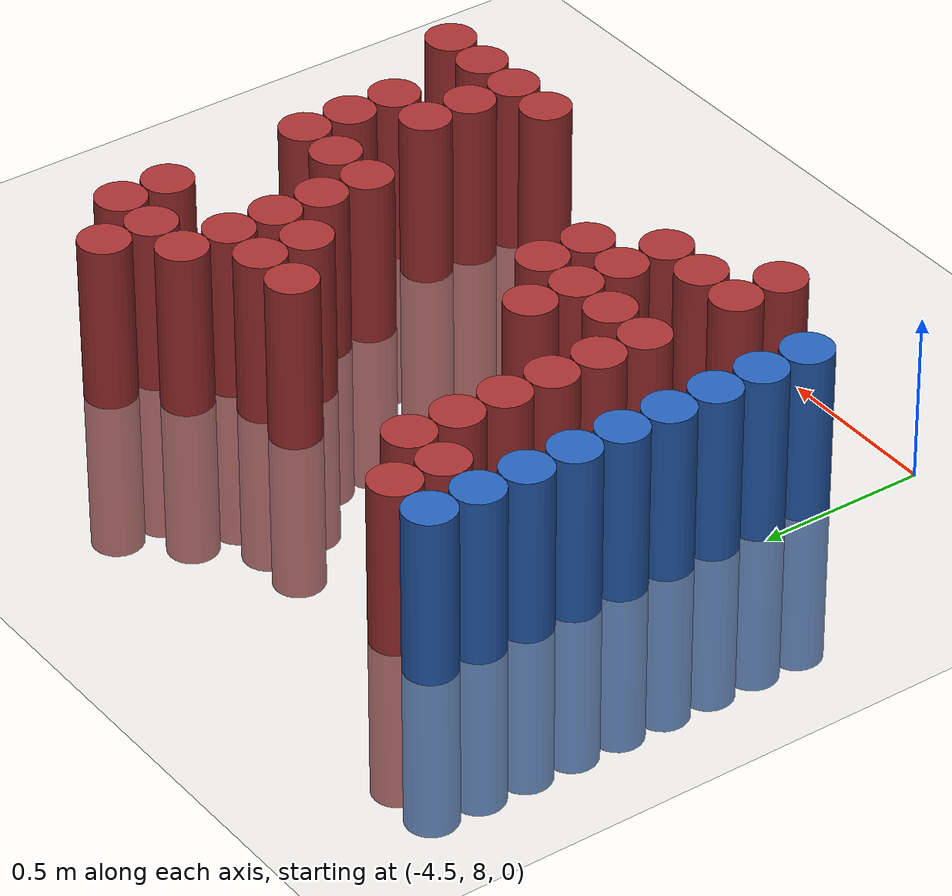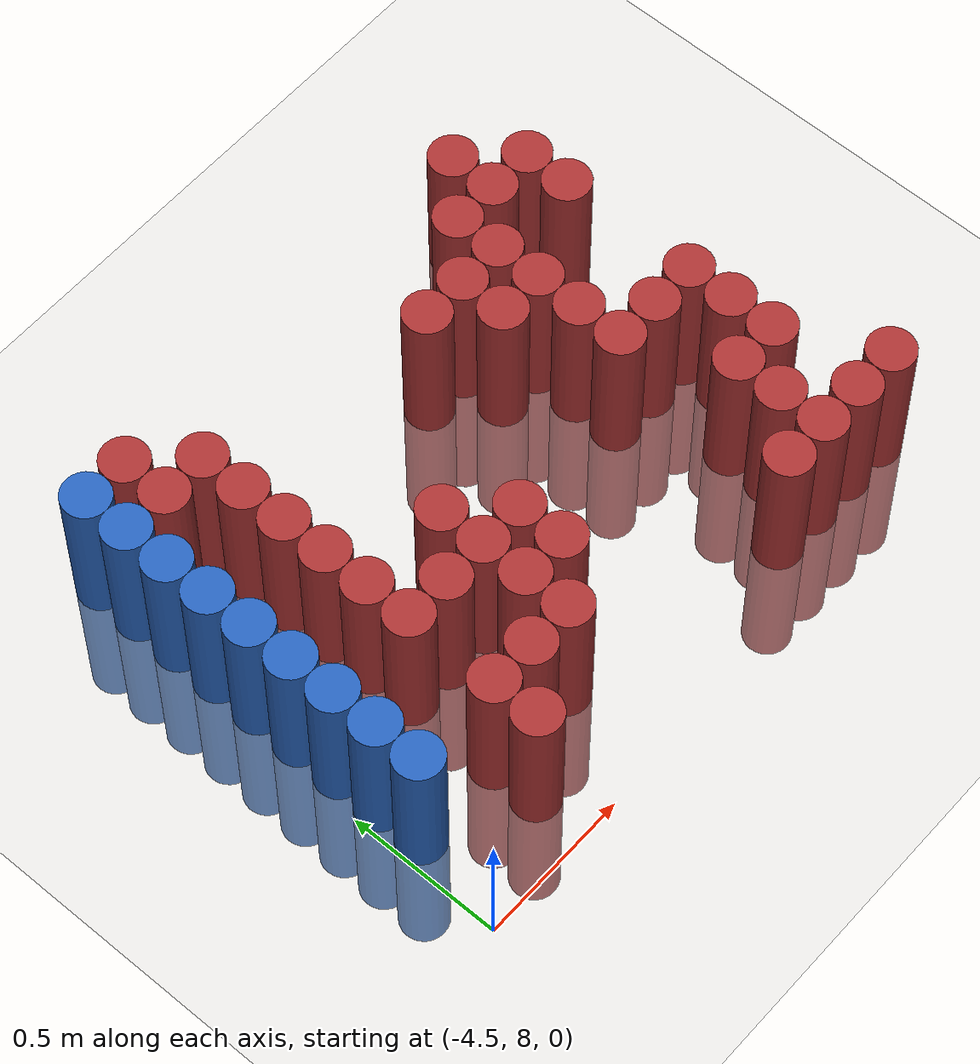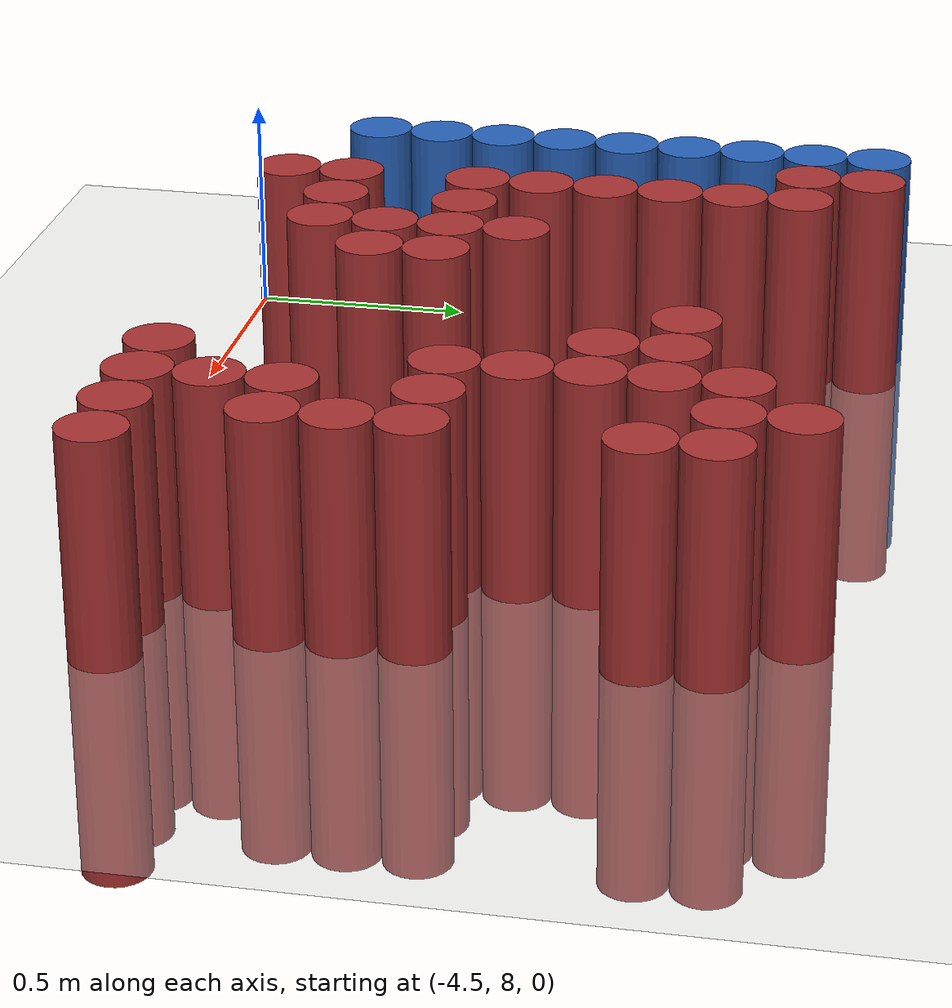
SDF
<sdf version="1.6">
 <world name="default">
  <model name="ground_plane">
   <static>1</static>
   <link name="link">
    <collision name="collision">
     <geometry><plane><normal>0 0 1</normal><size>100 100</size></plane></geometry>
     <surface><friction><ode><mu>100</mu><mu2>50</mu2></ode></friction></surface>
    </collision>
    <visual name="visual">
     <cast_shadows>0</cast_shadows>
     <geometry><plane><normal>0 0 1</normal><size>100 100</size></plane></geometry>
     <material>
      <script><uri>file://media/materials/scripts/gazebo.material</uri><name>Gazebo/Grey</name></script>
     </material>
    </visual>
   </link>
  </model>
  <model name="unit_cylinder_117">
   <static>1</static>
   <pose>-4.425000 8.325000 0.000000 0.000000 0.000000 0.000000</pose>
   <link name="link">
    <inertial>
     <mass>1</mass>
     <inertia><ixx>0.145833</ixx><ixy>0</ixy><ixz>0</ixz><iyy>0.145833</iyy><iyz>0</iyz><izz>0.125</izz></inertia>
    </inertial>
    <collision name="collision">
     <geometry><cylinder><radius>0.075000</radius><length>1</length></cylinder></geometry>
    </collision>
    <visual name="visual">
     <geometry><cylinder><radius>0.075000</radius><length>1</length></cylinder></geometry>
     <material>
      <ambient>0.152000 0.379000 0.720000 1</ambient>
      <diffuse>0.152000 0.379000 0.720000 1</diffuse>
     </material>
     <material>
      <script><name>Gazebo/Grey</name><uri>file://media/materials/scripts/gazebo.material</uri></script>
     </material>
    </visual>
   </link>
  </model>
  <model name="unit_cylinder_118">
   <static>1</static>
   <pose>-4.425000 8.475000 0.000000 0.000000 0.000000 0.000000</pose>
   <link name="link">
    <inertial>
     <mass>1</mass>
     <inertia><ixx>0.145833</ixx><ixy>0</ixy><ixz>0</ixz><iyy>0.145833</iyy><iyz>0</iyz><izz>0.125</izz></inertia>
    </inertial>
    <collision name="collision">
     <geometry><cylinder><radius>0.075000</radius><length>1</length></cylinder></geometry>
    </collision>
    <visual name="visual">
     <geometry><cylinder><radius>0.075000</radius><length>1</length></cylinder></geometry>
     <material>
      <ambient>0.152000 0.379000 0.720000 1</ambient>
      <diffuse>0.152000 0.379000 0.720000 1</diffuse>
     </material>
     <material>
      <script><name>Gazebo/Grey</name><uri>file://media/materials/scripts/gazebo.material</uri></script>
     </material>
    </visual>
   </link>
  </model>
  <model name="unit_cylinder_119">
   <static>1</static>
   <pose>-4.425000 8.625000 0.000000 0.000000 0.000000 0.000000</pose>
   <link name="link">
    <inertial>
     <mass>1</mass>
     <inertia><ixx>0.145833</ixx><ixy>0</ixy><ixz>0</ixz><iyy>0.145833</iyy><iyz>0</iyz><izz>0.125</izz></inertia>
    </inertial>
    <collision name="collision">
     <geometry><cylinder><radius>0.075000</radius><length>1</length></cylinder></geometry>
    </collision>
    <visual name="visual">
     <geometry><cylinder><radius>0.075000</radius><length>1</length></cylinder></geometry>
     <material>
      <ambient>0.152000 0.379000 0.720000 1</ambient>
      <diffuse>0.152000 0.379000 0.720000 1</diffuse>
     </material>
     <material>
      <script><name>Gazebo/Grey</name><uri>file://media/materials/scripts/gazebo.material</uri></script>
     </material>
    </visual>
   </link>
  </model>
  <model name="unit_cylinder_120">
   <static>1</static>
   <pose>-4.425000 8.775000 0.000000 0.000000 0.000000 0.000000</pose>
   <link name="link">
    <inertial>
     <mass>1</mass>
     <inertia><ixx>0.145833</ixx><ixy>0</ixy><ixz>0</ixz><iyy>0.145833</iyy><iyz>0</iyz><izz>0.125</izz></inertia>
    </inertial>
    <collision name="collision">
     <geometry><cylinder><radius>0.075000</radius><length>1</length></cylinder></geometry>
    </collision>
    <visual name="visual">
     <geometry><cylinder><radius>0.075000</radius><length>1</length></cylinder></geometry>
     <material>
      <ambient>0.152000 0.379000 0.720000 1</ambient>
      <diffuse>0.152000 0.379000 0.720000 1</diffuse>
     </material>
     <material>
      <script><name>Gazebo/Grey</name><uri>file://media/materials/scripts/gazebo.material</uri></script>
     </material>
    </visual>
   </link>
  </model>
  <model name="unit_cylinder_121">
   <static>1</static>
   <pose>-4.425000 8.925000 0.000000 0.000000 0.000000 0.000000</pose>
   <link name="link">
    <inertial>
     <mass>1</mass>
     <inertia><ixx>0.145833</ixx><ixy>0</ixy><ixz>0</ixz><iyy>0.145833</iyy><iyz>0</iyz><izz>0.125</izz></inertia>
    </inertial>
    <collision name="collision">
     <geometry><cylinder><radius>0.075000</radius><length>1</length></cylinder></geometry>
    </collision>
    <visual name="visual">
     <geometry><cylinder><radius>0.075000</radius><length>1</length></cylinder></geometry>
     <material>
      <ambient>0.152000 0.379000 0.720000 1</ambient>
      <diffuse>0.152000 0.379000 0.720000 1</diffuse>
     </material>
     <material>
      <script><name>Gazebo/Grey</name><uri>file://media/materials/scripts/gazebo.material</uri></script>
     </material>
    </visual>
   </link>
  </model>
  <model name="unit_cylinder_122">
   <static>1</static>
   <pose>-4.425000 9.075000 0.000000 0.000000 0.000000 0.000000</pose>
   <link name="link">
    <inertial>
     <mass>1</mass>
     <inertia><ixx>0.145833</ixx><ixy>0</ixy><ixz>0</ixz><iyy>0.145833</iyy><iyz>0</iyz><izz>0.125</izz></inertia>
    </inertial>
    <collision name="collision">
     <geometry><cylinder><radius>0.075000</radius><length>1</length></cylinder></geometry>
    </collision>
    <visual name="visual">
     <geometry><cylinder><radius>0.075000</radius><length>1</length></cylinder></geometry>
     <material>
      <ambient>0.152000 0.379000 0.720000 1</ambient>
      <diffuse>0.152000 0.379000 0.720000 1</diffuse>
     </material>
     <material>
      <script><name>Gazebo/Grey</name><uri>file://media/materials/scripts/gazebo.material</uri></script>
     </material>
    </visual>
   </link>
  </model>
  <model name="unit_cylinder_123">
   <static>1</static>
   <pose>-4.425000 9.225000 0.000000 0.000000 0.000000 0.000000</pose>
   <link name="link">
    <inertial>
     <mass>1</mass>
     <inertia><ixx>0.145833</ixx><ixy>0</ixy><ixz>0</ixz><iyy>0.145833</iyy><iyz>0</iyz><izz>0.125</izz></inertia>
    </inertial>
    <collision name="collision">
     <geometry><cylinder><radius>0.075000</radius><length>1</length></cylinder></geometry>
    </collision>
    <visual name="visual">
     <geometry><cylinder><radius>0.075000</radius><length>1</length></cylinder></geometry>
     <material>
      <ambient>0.152000 0.379000 0.720000 1</ambient>
      <diffuse>0.152000 0.379000 0.720000 1</diffuse>
     </material>
     <material>
      <script><name>Gazebo/Grey</name><uri>file://media/materials/scripts/gazebo.material</uri></script>
     </material>
    </visual>
   </link>
  </model>
  <model name="unit_cylinder_124">
   <static>1</static>
   <pose>-4.425000 9.375000 0.000000 0.000000 0.000000 0.000000</pose>
   <link name="link">
    <inertial>
     <mass>1</mass>
     <inertia><ixx>0.145833</ixx><ixy>0</ixy><ixz>0</ixz><iyy>0.145833</iyy><iyz>0</iyz><izz>0.125</izz></inertia>
    </inertial>
    <collision name="collision">
     <geometry><cylinder><radius>0.075000</radius><length>1</length></cylinder></geometry>
    </collision>
    <visual name="visual">
     <geometry><cylinder><radius>0.075000</radius><length>1</length></cylinder></geometry>
     <material>
      <ambient>0.152000 0.379000 0.720000 1</ambient>
      <diffuse>0.152000 0.379000 0.720000 1</diffuse>
     </material>
     <material>
      <script><name>Gazebo/Grey</name><uri>file://media/materials/scripts/gazebo.material</uri></script>
     </material>
    </visual>
   </link>
  </model>
  <model name="unit_cylinder_125">
   <static>1</static>
   <pose>-4.425000 9.525000 0.000000 0.000000 0.000000 0.000000</pose>
   <link name="link">
    <inertial>
     <mass>1</mass>
     <inertia><ixx>0.145833</ixx><ixy>0</ixy><ixz>0</ixz><iyy>0.145833</iyy><iyz>0</iyz><izz>0.125</izz></inertia>
    </inertial>
    <collision name="collision">
     <geometry><cylinder><radius>0.075000</radius><length>1</length></cylinder></geometry>
    </collision>
    <visual name="visual">
     <geometry><cylinder><radius>0.075000</radius><length>1</length></cylinder></geometry>
     <material>
      <ambient>0.152000 0.379000 0.720000 1</ambient>
      <diffuse>0.152000 0.379000 0.720000 1</diffuse>
     </material>
     <material>
      <script><name>Gazebo/Grey</name><uri>file://media/materials/scripts/gazebo.material</uri></script>
     </material>
    </visual>
   </link>
  </model>
  <model name="unit_cylinder_141">
   <static>1</static>
   <pose>-4.275000 9.375000 0.000000 0.000000 0.000000 0.000000</pose>
   <link name="link">
    <inertial>
     <mass>1</mass>
     <inertia><ixx>0.145833</ixx><ixy>0</ixy><ixz>0</ixz><iyy>0.145833</iyy><iyz>0</iyz><izz>0.125</izz></inertia>
    </inertial>
    <collision name="collision">
     <geometry><cylinder><radius>0.075000</radius><length>1</length></cylinder></geometry>
    </collision>
    <visual name="visual">
     <geometry><cylinder><radius>0.075000</radius><length>1</length></cylinder></geometry>
     <material>
      <ambient>0.648000 0.192000 0.192000 1</ambient>
      <diffuse>0.648000 0.192000 0.192000 1</diffuse>
     </material>
     <material>
      <script><name>Gazebo/Grey</name><uri>file://media/materials/scripts/gazebo.material</uri></script>
     </material>
    </visual>
   </link>
  </model>
  <model name="unit_cylinder_142">
   <static>1</static>
   <pose>-4.275000 9.525000 0.000000 0.000000 0.000000 0.000000</pose>
   <link name="link">
    <inertial>
     <mass>1</mass>
     <inertia><ixx>0.145833</ixx><ixy>0</ixy><ixz>0</ixz><iyy>0.145833</iyy><iyz>0</iyz><izz>0.125</izz></inertia>
    </inertial>
    <collision name="collision">
     <geometry><cylinder><radius>0.075000</radius><length>1</length></cylinder></geometry>
    </collision>
    <visual name="visual">
     <geometry><cylinder><radius>0.075000</radius><length>1</length></cylinder></geometry>
     <material>
      <ambient>0.648000 0.192000 0.192000 1</ambient>
      <diffuse>0.648000 0.192000 0.192000 1</diffuse>
     </material>
     <material>
      <script><name>Gazebo/Grey</name><uri>file://media/materials/scripts/gazebo.material</uri></script>
     </material>
    </visual>
   </link>
  </model>
  <model name="unit_cylinder_149">
   <static>1</static>
   <pose>-4.125000 8.175000 0.000000 0.000000 0.000000 0.000000</pose>
   <link name="link">
    <inertial>
     <mass>1</mass>
     <inertia><ixx>0.145833</ixx><ixy>0</ixy><ixz>0</ixz><iyy>0.145833</iyy><iyz>0</iyz><izz>0.125</izz></inertia>
    </inertial>
    <collision name="collision">
     <geometry><cylinder><radius>0.075000</radius><length>1</length></cylinder></geometry>
    </collision>
    <visual name="visual">
     <geometry><cylinder><radius>0.075000</radius><length>1</length></cylinder></geometry>
     <material>
      <ambient>0.648000 0.192000 0.192000 1</ambient>
      <diffuse>0.648000 0.192000 0.192000 1</diffuse>
     </material>
     <material>
      <script><name>Gazebo/Grey</name><uri>file://media/materials/scripts/gazebo.material</uri></script>
     </material>
    </visual>
   </link>
  </model>
  <model name="unit_cylinder_150">
   <static>1</static>
   <pose>-4.125000 8.325000 0.000000 0.000000 0.000000 0.000000</pose>
   <link name="link">
    <inertial>
     <mass>1</mass>
     <inertia><ixx>0.145833</ixx><ixy>0</ixy><ixz>0</ixz><iyy>0.145833</iyy><iyz>0</iyz><izz>0.125</izz></inertia>
    </inertial>
    <collision name="collision">
     <geometry><cylinder><radius>0.075000</radius><length>1</length></cylinder></geometry>
    </collision>
    <visual name="visual">
     <geometry><cylinder><radius>0.075000</radius><length>1</length></cylinder></geometry>
     <material>
      <ambient>0.648000 0.192000 0.192000 1</ambient>
      <diffuse>0.648000 0.192000 0.192000 1</diffuse>
     </material>
     <material>
      <script><name>Gazebo/Grey</name><uri>file://media/materials/scripts/gazebo.material</uri></script>
     </material>
    </visual>
   </link>
  </model>
  <model name="unit_cylinder_151">
   <static>1</static>
   <pose>-4.125000 8.625000 0.000000 0.000000 0.000000 0.000000</pose>
   <link name="link">
    <inertial>
     <mass>1</mass>
     <inertia><ixx>0.145833</ixx><ixy>0</ixy><ixz>0</ixz><iyy>0.145833</iyy><iyz>0</iyz><izz>0.125</izz></inertia>
    </inertial>
    <collision name="collision">
     <geometry><cylinder><radius>0.075000</radius><length>1</length></cylinder></geometry>
    </collision>
    <visual name="visual">
     <geometry><cylinder><radius>0.075000</radius><length>1</length></cylinder></geometry>
     <material>
      <ambient>0.648000 0.192000 0.192000 1</ambient>
      <diffuse>0.648000 0.192000 0.192000 1</diffuse>
     </material>
     <material>
      <script><name>Gazebo/Grey</name><uri>file://media/materials/scripts/gazebo.material</uri></script>
     </material>
    </visual>
   </link>
  </model>
  <model name="unit_cylinder_152">
   <static>1</static>
   <pose>-4.125000 8.775000 0.000000 0.000000 0.000000 0.000000</pose>
   <link name="link">
    <inertial>
     <mass>1</mass>
     <inertia><ixx>0.145833</ixx><ixy>0</ixy><ixz>0</ixz><iyy>0.145833</iyy><iyz>0</iyz><izz>0.125</izz></inertia>
    </inertial>
    <collision name="collision">
     <geometry><cylinder><radius>0.075000</radius><length>1</length></cylinder></geometry>
    </collision>
    <visual name="visual">
     <geometry><cylinder><radius>0.075000</radius><length>1</length></cylinder></geometry>
     <material>
      <ambient>0.648000 0.192000 0.192000 1</ambient>
      <diffuse>0.648000 0.192000 0.192000 1</diffuse>
     </material>
     <material>
      <script><name>Gazebo/Grey</name><uri>file://media/materials/scripts/gazebo.material</uri></script>
     </material>
    </visual>
   </link>
  </model>
  <model name="unit_cylinder_153">
   <static>1</static>
   <pose>-4.125000 8.925000 0.000000 0.000000 0.000000 0.000000</pose>
   <link name="link">
    <inertial>
     <mass>1</mass>
     <inertia><ixx>0.145833</ixx><ixy>0</ixy><ixz>0</ixz><iyy>0.145833</iyy><iyz>0</iyz><izz>0.125</izz></inertia>
    </inertial>
    <collision name="collision">
     <geometry><cylinder><radius>0.075000</radius><length>1</length></cylinder></geometry>
    </collision>
    <visual name="visual">
     <geometry><cylinder><radius>0.075000</radius><length>1</length></cylinder></geometry>
     <material>
      <ambient>0.648000 0.192000 0.192000 1</ambient>
      <diffuse>0.648000 0.192000 0.192000 1</diffuse>
     </material>
     <material>
      <script><name>Gazebo/Grey</name><uri>file://media/materials/scripts/gazebo.material</uri></script>
     </material>
    </visual>
   </link>
  </model>
  <model name="unit_cylinder_154">
   <static>1</static>
   <pose>-4.125000 9.075000 0.000000 0.000000 0.000000 0.000000</pose>
   <link name="link">
    <inertial>
     <mass>1</mass>
     <inertia><ixx>0.145833</ixx><ixy>0</ixy><ixz>0</ixz><iyy>0.145833</iyy><iyz>0</iyz><izz>0.125</izz></inertia>
    </inertial>
    <collision name="collision">
     <geometry><cylinder><radius>0.075000</radius><length>1</length></cylinder></geometry>
    </collision>
    <visual name="visual">
     <geometry><cylinder><radius>0.075000</radius><length>1</length></cylinder></geometry>
     <material>
      <ambient>0.648000 0.192000 0.192000 1</ambient>
      <diffuse>0.648000 0.192000 0.192000 1</diffuse>
     </material>
     <material>
      <script><name>Gazebo/Grey</name><uri>file://media/materials/scripts/gazebo.material</uri></script>
     </material>
    </visual>
   </link>
  </model>
  <model name="unit_cylinder_155">
   <static>1</static>
   <pose>-4.125000 9.225000 0.000000 0.000000 0.000000 0.000000</pose>
   <link name="link">
    <inertial>
     <mass>1</mass>
     <inertia><ixx>0.145833</ixx><ixy>0</ixy><ixz>0</ixz><iyy>0.145833</iyy><iyz>0</iyz><izz>0.125</izz></inertia>
    </inertial>
    <collision name="collision">
     <geometry><cylinder><radius>0.075000</radius><length>1</length></cylinder></geometry>
    </collision>
    <visual name="visual">
     <geometry><cylinder><radius>0.075000</radius><length>1</length></cylinder></geometry>
     <material>
      <ambient>0.648000 0.192000 0.192000 1</ambient>
      <diffuse>0.648000 0.192000 0.192000 1</diffuse>
     </material>
     <material>
      <script><name>Gazebo/Grey</name><uri>file://media/materials/scripts/gazebo.material</uri></script>
     </material>
    </visual>
   </link>
  </model>
  <model name="unit_cylinder_156">
   <static>1</static>
   <pose>-4.125000 9.375000 0.000000 0.000000 0.000000 0.000000</pose>
   <link name="link">
    <inertial>
     <mass>1</mass>
     <inertia><ixx>0.145833</ixx><ixy>0</ixy><ixz>0</ixz><iyy>0.145833</iyy><iyz>0</iyz><izz>0.125</izz></inertia>
    </inertial>
    <collision name="collision">
     <geometry><cylinder><radius>0.075000</radius><length>1</length></cylinder></geometry>
    </collision>
    <visual name="visual">
     <geometry><cylinder><radius>0.075000</radius><length>1</length></cylinder></geometry>
     <material>
      <ambient>0.648000 0.192000 0.192000 1</ambient>
      <diffuse>0.648000 0.192000 0.192000 1</diffuse>
     </material>
     <material>
      <script><name>Gazebo/Grey</name><uri>file://media/materials/scripts/gazebo.material</uri></script>
     </material>
    </visual>
   </link>
  </model>
  <model name="unit_cylinder_159">
   <static>1</static>
   <pose>-3.975000 8.325000 0.000000 0.000000 0.000000 0.000000</pose>
   <link name="link">
    <inertial>
     <mass>1</mass>
     <inertia><ixx>0.145833</ixx><ixy>0</ixy><ixz>0</ixz><iyy>0.145833</iyy><iyz>0</iyz><izz>0.125</izz></inertia>
    </inertial>
    <collision name="collision">
     <geometry><cylinder><radius>0.075000</radius><length>1</length></cylinder></geometry>
    </collision>
    <visual name="visual">
     <geometry><cylinder><radius>0.075000</radius><length>1</length></cylinder></geometry>
     <material>
      <ambient>0.648000 0.192000 0.192000 1</ambient>
      <diffuse>0.648000 0.192000 0.192000 1</diffuse>
     </material>
     <material>
      <script><name>Gazebo/Grey</name><uri>file://media/materials/scripts/gazebo.material</uri></script>
     </material>
    </visual>
   </link>
  </model>
  <model name="unit_cylinder_160">
   <static>1</static>
   <pose>-3.975000 8.625000 0.000000 0.000000 0.000000 0.000000</pose>
   <link name="link">
    <inertial>
     <mass>1</mass>
     <inertia><ixx>0.145833</ixx><ixy>0</ixy><ixz>0</ixz><iyy>0.145833</iyy><iyz>0</iyz><izz>0.125</izz></inertia>
    </inertial>
    <collision name="collision">
     <geometry><cylinder><radius>0.075000</radius><length>1</length></cylinder></geometry>
    </collision>
    <visual name="visual">
     <geometry><cylinder><radius>0.075000</radius><length>1</length></cylinder></geometry>
     <material>
      <ambient>0.648000 0.192000 0.192000 1</ambient>
      <diffuse>0.648000 0.192000 0.192000 1</diffuse>
     </material>
     <material>
      <script><name>Gazebo/Grey</name><uri>file://media/materials/scripts/gazebo.material</uri></script>
     </material>
    </visual>
   </link>
  </model>
  <model name="unit_cylinder_164">
   <static>1</static>
   <pose>-3.825000 8.325000 0.000000 0.000000 0.000000 0.000000</pose>
   <link name="link">
    <inertial>
     <mass>1</mass>
     <inertia><ixx>0.145833</ixx><ixy>0</ixy><ixz>0</ixz><iyy>0.145833</iyy><iyz>0</iyz><izz>0.125</izz></inertia>
    </inertial>
    <collision name="collision">
     <geometry><cylinder><radius>0.075000</radius><length>1</length></cylinder></geometry>
    </collision>
    <visual name="visual">
     <geometry><cylinder><radius>0.075000</radius><length>1</length></cylinder></geometry>
     <material>
      <ambient>0.648000 0.192000 0.192000 1</ambient>
      <diffuse>0.648000 0.192000 0.192000 1</diffuse>
     </material>
     <material>
      <script><name>Gazebo/Grey</name><uri>file://media/materials/scripts/gazebo.material</uri></script>
     </material>
    </visual>
   </link>
  </model>
  <model name="unit_cylinder_165">
   <static>1</static>
   <pose>-3.825000 8.475000 0.000000 0.000000 0.000000 0.000000</pose>
   <link name="link">
    <inertial>
     <mass>1</mass>
     <inertia><ixx>0.145833</ixx><ixy>0</ixy><ixz>0</ixz><iyy>0.145833</iyy><iyz>0</iyz><izz>0.125</izz></inertia>
    </inertial>
    <collision name="collision">
     <geometry><cylinder><radius>0.075000</radius><length>1</length></cylinder></geometry>
    </collision>
    <visual name="visual">
     <geometry><cylinder><radius>0.075000</radius><length>1</length></cylinder></geometry>
     <material>
      <ambient>0.648000 0.192000 0.192000 1</ambient>
      <diffuse>0.648000 0.192000 0.192000 1</diffuse>
     </material>
     <material>
      <script><name>Gazebo/Grey</name><uri>file://media/materials/scripts/gazebo.material</uri></script>
     </material>
    </visual>
   </link>
  </model>
  <model name="unit_cylinder_166">
   <static>1</static>
   <pose>-3.825000 8.625000 0.000000 0.000000 0.000000 0.000000</pose>
   <link name="link">
    <inertial>
     <mass>1</mass>
     <inertia><ixx>0.145833</ixx><ixy>0</ixy><ixz>0</ixz><iyy>0.145833</iyy><iyz>0</iyz><izz>0.125</izz></inertia>
    </inertial>
    <collision name="collision">
     <geometry><cylinder><radius>0.075000</radius><length>1</length></cylinder></geometry>
    </collision>
    <visual name="visual">
     <geometry><cylinder><radius>0.075000</radius><length>1</length></cylinder></geometry>
     <material>
      <ambient>0.648000 0.192000 0.192000 1</ambient>
      <diffuse>0.648000 0.192000 0.192000 1</diffuse>
     </material>
     <material>
      <script><name>Gazebo/Grey</name><uri>file://media/materials/scripts/gazebo.material</uri></script>
     </material>
    </visual>
   </link>
  </model>
  <model name="unit_cylinder_167">
   <static>1</static>
   <pose>-3.825000 8.775000 0.000000 0.000000 0.000000 0.000000</pose>
   <link name="link">
    <inertial>
     <mass>1</mass>
     <inertia><ixx>0.145833</ixx><ixy>0</ixy><ixz>0</ixz><iyy>0.145833</iyy><iyz>0</iyz><izz>0.125</izz></inertia>
    </inertial>
    <collision name="collision">
     <geometry><cylinder><radius>0.075000</radius><length>1</length></cylinder></geometry>
    </collision>
    <visual name="visual">
     <geometry><cylinder><radius>0.075000</radius><length>1</length></cylinder></geometry>
     <material>
      <ambient>0.648000 0.192000 0.192000 1</ambient>
      <diffuse>0.648000 0.192000 0.192000 1</diffuse>
     </material>
     <material>
      <script><name>Gazebo/Grey</name><uri>file://media/materials/scripts/gazebo.material</uri></script>
     </material>
    </visual>
   </link>
  </model>
  <model name="unit_cylinder_172">
   <static>1</static>
   <pose>-3.675000 8.475000 0.000000 0.000000 0.000000 0.000000</pose>
   <link name="link">
    <inertial>
     <mass>1</mass>
     <inertia><ixx>0.145833</ixx><ixy>0</ixy><ixz>0</ixz><iyy>0.145833</iyy><iyz>0</iyz><izz>0.125</izz></inertia>
    </inertial>
    <collision name="collision">
     <geometry><cylinder><radius>0.075000</radius><length>1</length></cylinder></geometry>
    </collision>
    <visual name="visual">
     <geometry><cylinder><radius>0.075000</radius><length>1</length></cylinder></geometry>
     <material>
      <ambient>0.648000 0.192000 0.192000 1</ambient>
      <diffuse>0.648000 0.192000 0.192000 1</diffuse>
     </material>
     <material>
      <script><name>Gazebo/Grey</name><uri>file://media/materials/scripts/gazebo.material</uri></script>
     </material>
    </visual>
   </link>
  </model>
  <model name="unit_cylinder_173">
   <static>1</static>
   <pose>-3.675000 8.625000 0.000000 0.000000 0.000000 0.000000</pose>
   <link name="link">
    <inertial>
     <mass>1</mass>
     <inertia><ixx>0.145833</ixx><ixy>0</ixy><ixz>0</ixz><iyy>0.145833</iyy><iyz>0</iyz><izz>0.125</izz></inertia>
    </inertial>
    <collision name="collision">
     <geometry><cylinder><radius>0.075000</radius><length>1</length></cylinder></geometry>
    </collision>
    <visual name="visual">
     <geometry><cylinder><radius>0.075000</radius><length>1</length></cylinder></geometry>
     <material>
      <ambient>0.648000 0.192000 0.192000 1</ambient>
      <diffuse>0.648000 0.192000 0.192000 1</diffuse>
     </material>
     <material>
      <script><name>Gazebo/Grey</name><uri>file://media/materials/scripts/gazebo.material</uri></script>
     </material>
    </visual>
   </link>
  </model>
  <model name="unit_cylinder_182">
   <static>1</static>
   <pose>-3.375000 9.225000 0.000000 0.000000 0.000000 0.000000</pose>
   <link name="link">
    <inertial>
     <mass>1</mass>
     <inertia><ixx>0.145833</ixx><ixy>0</ixy><ixz>0</ixz><iyy>0.145833</iyy><iyz>0</iyz><izz>0.125</izz></inertia>
    </inertial>
    <collision name="collision">
     <geometry><cylinder><radius>0.075000</radius><length>1</length></cylinder></geometry>
    </collision>
    <visual name="visual">
     <geometry><cylinder><radius>0.075000</radius><length>1</length></cylinder></geometry>
     <material>
      <ambient>0.648000 0.192000 0.192000 1</ambient>
      <diffuse>0.648000 0.192000 0.192000 1</diffuse>
     </material>
     <material>
      <script><name>Gazebo/Grey</name><uri>file://media/materials/scripts/gazebo.material</uri></script>
     </material>
    </visual>
   </link>
  </model>
  <model name="unit_cylinder_185">
   <static>1</static>
   <pose>-3.225000 9.075000 0.000000 0.000000 0.000000 0.000000</pose>
   <link name="link">
    <inertial>
     <mass>1</mass>
     <inertia><ixx>0.145833</ixx><ixy>0</ixy><ixz>0</ixz><iyy>0.145833</iyy><iyz>0</iyz><izz>0.125</izz></inertia>
    </inertial>
    <collision name="collision">
     <geometry><cylinder><radius>0.075000</radius><length>1</length></cylinder></geometry>
    </collision>
    <visual name="visual">
     <geometry><cylinder><radius>0.075000</radius><length>1</length></cylinder></geometry>
     <material>
      <ambient>0.648000 0.192000 0.192000 1</ambient>
      <diffuse>0.648000 0.192000 0.192000 1</diffuse>
     </material>
     <material>
      <script><name>Gazebo/Grey</name><uri>file://media/materials/scripts/gazebo.material</uri></script>
     </material>
    </visual>
   </link>
  </model>
  <model name="unit_cylinder_186">
   <static>1</static>
   <pose>-3.225000 9.225000 0.000000 0.000000 0.000000 0.000000</pose>
   <link name="link">
    <inertial>
     <mass>1</mass>
     <inertia><ixx>0.145833</ixx><ixy>0</ixy><ixz>0</ixz><iyy>0.145833</iyy><iyz>0</iyz><izz>0.125</izz></inertia>
    </inertial>
    <collision name="collision">
     <geometry><cylinder><radius>0.075000</radius><length>1</length></cylinder></geometry>
    </collision>
    <visual name="visual">
     <geometry><cylinder><radius>0.075000</radius><length>1</length></cylinder></geometry>
     <material>
      <ambient>0.648000 0.192000 0.192000 1</ambient>
      <diffuse>0.648000 0.192000 0.192000 1</diffuse>
     </material>
     <material>
      <script><name>Gazebo/Grey</name><uri>file://media/materials/scripts/gazebo.material</uri></script>
     </material>
    </visual>
   </link>
  </model>
  <model name="unit_cylinder_190">
   <static>1</static>
   <pose>-3.075000 8.175000 0.000000 0.000000 0.000000 0.000000</pose>
   <link name="link">
    <inertial>
     <mass>1</mass>
     <inertia><ixx>0.145833</ixx><ixy>0</ixy><ixz>0</ixz><iyy>0.145833</iyy><iyz>0</iyz><izz>0.125</izz></inertia>
    </inertial>
    <collision name="collision">
     <geometry><cylinder><radius>0.075000</radius><length>1</length></cylinder></geometry>
    </collision>
    <visual name="visual">
     <geometry><cylinder><radius>0.075000</radius><length>1</length></cylinder></geometry>
     <material>
      <ambient>0.648000 0.192000 0.192000 1</ambient>
      <diffuse>0.648000 0.192000 0.192000 1</diffuse>
     </material>
     <material>
      <script><name>Gazebo/Grey</name><uri>file://media/materials/scripts/gazebo.material</uri></script>
     </material>
    </visual>
   </link>
  </model>
  <model name="unit_cylinder_191">
   <static>1</static>
   <pose>-3.075000 8.775000 0.000000 0.000000 0.000000 0.000000</pose>
   <link name="link">
    <inertial>
     <mass>1</mass>
     <inertia><ixx>0.145833</ixx><ixy>0</ixy><ixz>0</ixz><iyy>0.145833</iyy><iyz>0</iyz><izz>0.125</izz></inertia>
    </inertial>
    <collision name="collision">
     <geometry><cylinder><radius>0.075000</radius><length>1</length></cylinder></geometry>
    </collision>
    <visual name="visual">
     <geometry><cylinder><radius>0.075000</radius><length>1</length></cylinder></geometry>
     <material>
      <ambient>0.648000 0.192000 0.192000 1</ambient>
      <diffuse>0.648000 0.192000 0.192000 1</diffuse>
     </material>
     <material>
      <script><name>Gazebo/Grey</name><uri>file://media/materials/scripts/gazebo.material</uri></script>
     </material>
    </visual>
   </link>
  </model>
  <model name="unit_cylinder_192">
   <static>1</static>
   <pose>-3.075000 8.925000 0.000000 0.000000 0.000000 0.000000</pose>
   <link name="link">
    <inertial>
     <mass>1</mass>
     <inertia><ixx>0.145833</ixx><ixy>0</ixy><ixz>0</ixz><iyy>0.145833</iyy><iyz>0</iyz><izz>0.125</izz></inertia>
    </inertial>
    <collision name="collision">
     <geometry><cylinder><radius>0.075000</radius><length>1</length></cylinder></geometry>
    </collision>
    <visual name="visual">
     <geometry><cylinder><radius>0.075000</radius><length>1</length></cylinder></geometry>
     <material>
      <ambient>0.648000 0.192000 0.192000 1</ambient>
      <diffuse>0.648000 0.192000 0.192000 1</diffuse>
     </material>
     <material>
      <script><name>Gazebo/Grey</name><uri>file://media/materials/scripts/gazebo.material</uri></script>
     </material>
    </visual>
   </link>
  </model>
  <model name="unit_cylinder_193">
   <static>1</static>
   <pose>-3.075000 9.075000 0.000000 0.000000 0.000000 0.000000</pose>
   <link name="link">
    <inertial>
     <mass>1</mass>
     <inertia><ixx>0.145833</ixx><ixy>0</ixy><ixz>0</ixz><iyy>0.145833</iyy><iyz>0</iyz><izz>0.125</izz></inertia>
    </inertial>
    <collision name="collision">
     <geometry><cylinder><radius>0.075000</radius><length>1</length></cylinder></geometry>
    </collision>
    <visual name="visual">
     <geometry><cylinder><radius>0.075000</radius><length>1</length></cylinder></geometry>
     <material>
      <ambient>0.648000 0.192000 0.192000 1</ambient>
      <diffuse>0.648000 0.192000 0.192000 1</diffuse>
     </material>
     <material>
      <script><name>Gazebo/Grey</name><uri>file://media/materials/scripts/gazebo.material</uri></script>
     </material>
    </visual>
   </link>
  </model>
  <model name="unit_cylinder_194">
   <static>1</static>
   <pose>-3.075000 9.225000 0.000000 0.000000 0.000000 0.000000</pose>
   <link name="link">
    <inertial>
     <mass>1</mass>
     <inertia><ixx>0.145833</ixx><ixy>0</ixy><ixz>0</ixz><iyy>0.145833</iyy><iyz>0</iyz><izz>0.125</izz></inertia>
    </inertial>
    <collision name="collision">
     <geometry><cylinder><radius>0.075000</radius><length>1</length></cylinder></geometry>
    </collision>
    <visual name="visual">
     <geometry><cylinder><radius>0.075000</radius><length>1</length></cylinder></geometry>
     <material>
      <ambient>0.648000 0.192000 0.192000 1</ambient>
      <diffuse>0.648000 0.192000 0.192000 1</diffuse>
     </material>
     <material>
      <script><name>Gazebo/Grey</name><uri>file://media/materials/scripts/gazebo.material</uri></script>
     </material>
    </visual>
   </link>
  </model>
  <model name="unit_cylinder_195">
   <static>1</static>
   <pose>-3.075000 9.375000 0.000000 0.000000 0.000000 0.000000</pose>
   <link name="link">
    <inertial>
     <mass>1</mass>
     <inertia><ixx>0.145833</ixx><ixy>0</ixy><ixz>0</ixz><iyy>0.145833</iyy><iyz>0</iyz><izz>0.125</izz></inertia>
    </inertial>
    <collision name="collision">
     <geometry><cylinder><radius>0.075000</radius><length>1</length></cylinder></geometry>
    </collision>
    <visual name="visual">
     <geometry><cylinder><radius>0.075000</radius><length>1</length></cylinder></geometry>
     <material>
      <ambient>0.648000 0.192000 0.192000 1</ambient>
      <diffuse>0.648000 0.192000 0.192000 1</diffuse>
     </material>
     <material>
      <script><name>Gazebo/Grey</name><uri>file://media/materials/scripts/gazebo.material</uri></script>
     </material>
    </visual>
   </link>
  </model>
  <model name="unit_cylinder_200">
   <static>1</static>
   <pose>-2.925000 8.175000 0.000000 0.000000 0.000000 0.000000</pose>
   <link name="link">
    <inertial>
     <mass>1</mass>
     <inertia><ixx>0.145833</ixx><ixy>0</ixy><ixz>0</ixz><iyy>0.145833</iyy><iyz>0</iyz><izz>0.125</izz></inertia>
    </inertial>
    <collision name="collision">
     <geometry><cylinder><radius>0.075000</radius><length>1</length></cylinder></geometry>
    </collision>
    <visual name="visual">
     <geometry><cylinder><radius>0.075000</radius><length>1</length></cylinder></geometry>
     <material>
      <ambient>0.648000 0.192000 0.192000 1</ambient>
      <diffuse>0.648000 0.192000 0.192000 1</diffuse>
     </material>
     <material>
      <script><name>Gazebo/Grey</name><uri>file://media/materials/scripts/gazebo.material</uri></script>
     </material>
    </visual>
   </link>
  </model>
  <model name="unit_cylinder_201">
   <static>1</static>
   <pose>-2.925000 8.325000 0.000000 0.000000 0.000000 0.000000</pose>
   <link name="link">
    <inertial>
     <mass>1</mass>
     <inertia><ixx>0.145833</ixx><ixy>0</ixy><ixz>0</ixz><iyy>0.145833</iyy><iyz>0</iyz><izz>0.125</izz></inertia>
    </inertial>
    <collision name="collision">
     <geometry><cylinder><radius>0.075000</radius><length>1</length></cylinder></geometry>
    </collision>
    <visual name="visual">
     <geometry><cylinder><radius>0.075000</radius><length>1</length></cylinder></geometry>
     <material>
      <ambient>0.648000 0.192000 0.192000 1</ambient>
      <diffuse>0.648000 0.192000 0.192000 1</diffuse>
     </material>
     <material>
      <script><name>Gazebo/Grey</name><uri>file://media/materials/scripts/gazebo.material</uri></script>
     </material>
    </visual>
   </link>
  </model>
  <model name="unit_cylinder_202">
   <static>1</static>
   <pose>-2.925000 8.475000 0.000000 0.000000 0.000000 0.000000</pose>
   <link name="link">
    <inertial>
     <mass>1</mass>
     <inertia><ixx>0.145833</ixx><ixy>0</ixy><ixz>0</ixz><iyy>0.145833</iyy><iyz>0</iyz><izz>0.125</izz></inertia>
    </inertial>
    <collision name="collision">
     <geometry><cylinder><radius>0.075000</radius><length>1</length></cylinder></geometry>
    </collision>
    <visual name="visual">
     <geometry><cylinder><radius>0.075000</radius><length>1</length></cylinder></geometry>
     <material>
      <ambient>0.648000 0.192000 0.192000 1</ambient>
      <diffuse>0.648000 0.192000 0.192000 1</diffuse>
     </material>
     <material>
      <script><name>Gazebo/Grey</name><uri>file://media/materials/scripts/gazebo.material</uri></script>
     </material>
    </visual>
   </link>
  </model>
  <model name="unit_cylinder_203">
   <static>1</static>
   <pose>-2.925000 8.775000 0.000000 0.000000 0.000000 0.000000</pose>
   <link name="link">
    <inertial>
     <mass>1</mass>
     <inertia><ixx>0.145833</ixx><ixy>0</ixy><ixz>0</ixz><iyy>0.145833</iyy><iyz>0</iyz><izz>0.125</izz></inertia>
    </inertial>
    <collision name="collision">
     <geometry><cylinder><radius>0.075000</radius><length>1</length></cylinder></geometry>
    </collision>
    <visual name="visual">
     <geometry><cylinder><radius>0.075000</radius><length>1</length></cylinder></geometry>
     <material>
      <ambient>0.648000 0.192000 0.192000 1</ambient>
      <diffuse>0.648000 0.192000 0.192000 1</diffuse>
     </material>
     <material>
      <script><name>Gazebo/Grey</name><uri>file://media/materials/scripts/gazebo.material</uri></script>
     </material>
    </visual>
   </link>
  </model>
  <model name="unit_cylinder_204">
   <static>1</static>
   <pose>-2.925000 9.375000 0.000000 0.000000 0.000000 0.000000</pose>
   <link name="link">
    <inertial>
     <mass>1</mass>
     <inertia><ixx>0.145833</ixx><ixy>0</ixy><ixz>0</ixz><iyy>0.145833</iyy><iyz>0</iyz><izz>0.125</izz></inertia>
    </inertial>
    <collision name="collision">
     <geometry><cylinder><radius>0.075000</radius><length>1</length></cylinder></geometry>
    </collision>
    <visual name="visual">
     <geometry><cylinder><radius>0.075000</radius><length>1</length></cylinder></geometry>
     <material>
      <ambient>0.648000 0.192000 0.192000 1</ambient>
      <diffuse>0.648000 0.192000 0.192000 1</diffuse>
     </material>
     <material>
      <script><name>Gazebo/Grey</name><uri>file://media/materials/scripts/gazebo.material</uri></script>
     </material>
    </visual>
   </link>
  </model>
  <model name="unit_cylinder_205">
   <static>1</static>
   <pose>-2.925000 9.525000 0.000000 0.000000 0.000000 0.000000</pose>
   <link name="link">
    <inertial>
     <mass>1</mass>
     <inertia><ixx>0.145833</ixx><ixy>0</ixy><ixz>0</ixz><iyy>0.145833</iyy><iyz>0</iyz><izz>0.125</izz></inertia>
    </inertial>
    <collision name="collision">
     <geometry><cylinder><radius>0.075000</radius><length>1</length></cylinder></geometry>
    </collision>
    <visual name="visual">
     <geometry><cylinder><radius>0.075000</radius><length>1</length></cylinder></geometry>
     <material>
      <ambient>0.648000 0.192000 0.192000 1</ambient>
      <diffuse>0.648000 0.192000 0.192000 1</diffuse>
     </material>
     <material>
      <script><name>Gazebo/Grey</name><uri>file://media/materials/scripts/gazebo.material</uri></script>
     </material>
    </visual>
   </link>
  </model>
  <model name="unit_cylinder_208">
   <static>1</static>
   <pose>-2.775000 8.175000 0.000000 0.000000 0.000000 0.000000</pose>
   <link name="link">
    <inertial>
     <mass>1</mass>
     <inertia><ixx>0.145833</ixx><ixy>0</ixy><ixz>0</ixz><iyy>0.145833</iyy><iyz>0</iyz><izz>0.125</izz></inertia>
    </inertial>
    <collision name="collision">
     <geometry><cylinder><radius>0.075000</radius><length>1</length></cylinder></geometry>
    </collision>
    <visual name="visual">
     <geometry><cylinder><radius>0.075000</radius><length>1</length></cylinder></geometry>
     <material>
      <ambient>0.648000 0.192000 0.192000 1</ambient>
      <diffuse>0.648000 0.192000 0.192000 1</diffuse>
     </material>
     <material>
      <script><name>Gazebo/Grey</name><uri>file://media/materials/scripts/gazebo.material</uri></script>
     </material>
    </visual>
   </link>
  </model>
  <model name="unit_cylinder_209">
   <static>1</static>
   <pose>-2.775000 8.475000 0.000000 0.000000 0.000000 0.000000</pose>
   <link name="link">
    <inertial>
     <mass>1</mass>
     <inertia><ixx>0.145833</ixx><ixy>0</ixy><ixz>0</ixz><iyy>0.145833</iyy><iyz>0</iyz><izz>0.125</izz></inertia>
    </inertial>
    <collision name="collision">
     <geometry><cylinder><radius>0.075000</radius><length>1</length></cylinder></geometry>
    </collision>
    <visual name="visual">
     <geometry><cylinder><radius>0.075000</radius><length>1</length></cylinder></geometry>
     <material>
      <ambient>0.648000 0.192000 0.192000 1</ambient>
      <diffuse>0.648000 0.192000 0.192000 1</diffuse>
     </material>
     <material>
      <script><name>Gazebo/Grey</name><uri>file://media/materials/scripts/gazebo.material</uri></script>
     </material>
    </visual>
   </link>
  </model>
  <model name="unit_cylinder_210">
   <static>1</static>
   <pose>-2.775000 8.625000 0.000000 0.000000 0.000000 0.000000</pose>
   <link name="link">
    <inertial>
     <mass>1</mass>
     <inertia><ixx>0.145833</ixx><ixy>0</ixy><ixz>0</ixz><iyy>0.145833</iyy><iyz>0</iyz><izz>0.125</izz></inertia>
    </inertial>
    <collision name="collision">
     <geometry><cylinder><radius>0.075000</radius><length>1</length></cylinder></geometry>
    </collision>
    <visual name="visual">
     <geometry><cylinder><radius>0.075000</radius><length>1</length></cylinder></geometry>
     <material>
      <ambient>0.648000 0.192000 0.192000 1</ambient>
      <diffuse>0.648000 0.192000 0.192000 1</diffuse>
     </material>
     <material>
      <script><name>Gazebo/Grey</name><uri>file://media/materials/scripts/gazebo.material</uri></script>
     </material>
    </visual>
   </link>
  </model>
  <model name="unit_cylinder_211">
   <static>1</static>
   <pose>-2.775000 8.775000 0.000000 0.000000 0.000000 0.000000</pose>
   <link name="link">
    <inertial>
     <mass>1</mass>
     <inertia><ixx>0.145833</ixx><ixy>0</ixy><ixz>0</ixz><iyy>0.145833</iyy><iyz>0</iyz><izz>0.125</izz></inertia>
    </inertial>
    <collision name="collision">
     <geometry><cylinder><radius>0.075000</radius><length>1</length></cylinder></geometry>
    </collision>
    <visual name="visual">
     <geometry><cylinder><radius>0.075000</radius><length>1</length></cylinder></geometry>
     <material>
      <ambient>0.648000 0.192000 0.192000 1</ambient>
      <diffuse>0.648000 0.192000 0.192000 1</diffuse>
     </material>
     <material>
      <script><name>Gazebo/Grey</name><uri>file://media/materials/scripts/gazebo.material</uri></script>
     </material>
    </visual>
   </link>
  </model>
  <model name="unit_cylinder_212">
   <static>1</static>
   <pose>-2.775000 9.225000 0.000000 0.000000 0.000000 0.000000</pose>
   <link name="link">
    <inertial>
     <mass>1</mass>
     <inertia><ixx>0.145833</ixx><ixy>0</ixy><ixz>0</ixz><iyy>0.145833</iyy><iyz>0</iyz><izz>0.125</izz></inertia>
    </inertial>
    <collision name="collision">
     <geometry><cylinder><radius>0.075000</radius><length>1</length></cylinder></geometry>
    </collision>
    <visual name="visual">
     <geometry><cylinder><radius>0.075000</radius><length>1</length></cylinder></geometry>
     <material>
      <ambient>0.648000 0.192000 0.192000 1</ambient>
      <diffuse>0.648000 0.192000 0.192000 1</diffuse>
     </material>
     <material>
      <script><name>Gazebo/Grey</name><uri>file://media/materials/scripts/gazebo.material</uri></script>
     </material>
    </visual>
   </link>
  </model>
  <model name="unit_cylinder_213">
   <static>1</static>
   <pose>-2.775000 9.375000 0.000000 0.000000 0.000000 0.000000</pose>
   <link name="link">
    <inertial>
     <mass>1</mass>
     <inertia><ixx>0.145833</ixx><ixy>0</ixy><ixz>0</ixz><iyy>0.145833</iyy><iyz>0</iyz><izz>0.125</izz></inertia>
    </inertial>
    <collision name="collision">
     <geometry><cylinder><radius>0.075000</radius><length>1</length></cylinder></geometry>
    </collision>
    <visual name="visual">
     <geometry><cylinder><radius>0.075000</radius><length>1</length></cylinder></geometry>
     <material>
      <ambient>0.648000 0.192000 0.192000 1</ambient>
      <diffuse>0.648000 0.192000 0.192000 1</diffuse>
     </material>
     <material>
      <script><name>Gazebo/Grey</name><uri>file://media/materials/scripts/gazebo.material</uri></script>
     </material>
    </visual>
   </link>
  </model>
  <model name="unit_cylinder_215">
   <static>1</static>
   <pose>-2.625000 8.175000 0.000000 0.000000 0.000000 0.000000</pose>
   <link name="link">
    <inertial>
     <mass>1</mass>
     <inertia><ixx>0.145833</ixx><ixy>0</ixy><ixz>0</ixz><iyy>0.145833</iyy><iyz>0</iyz><izz>0.125</izz></inertia>
    </inertial>
    <collision name="collision">
     <geometry><cylinder><radius>0.075000</radius><length>1</length></cylinder></geometry>
    </collision>
    <visual name="visual">
     <geometry><cylinder><radius>0.075000</radius><length>1</length></cylinder></geometry>
     <material>
      <ambient>0.648000 0.192000 0.192000 1</ambient>
      <diffuse>0.648000 0.192000 0.192000 1</diffuse>
     </material>
     <material>
      <script><name>Gazebo/Grey</name><uri>file://media/materials/scripts/gazebo.material</uri></script>
     </material>
    </visual>
   </link>
  </model>
 </world>
</sdf>
